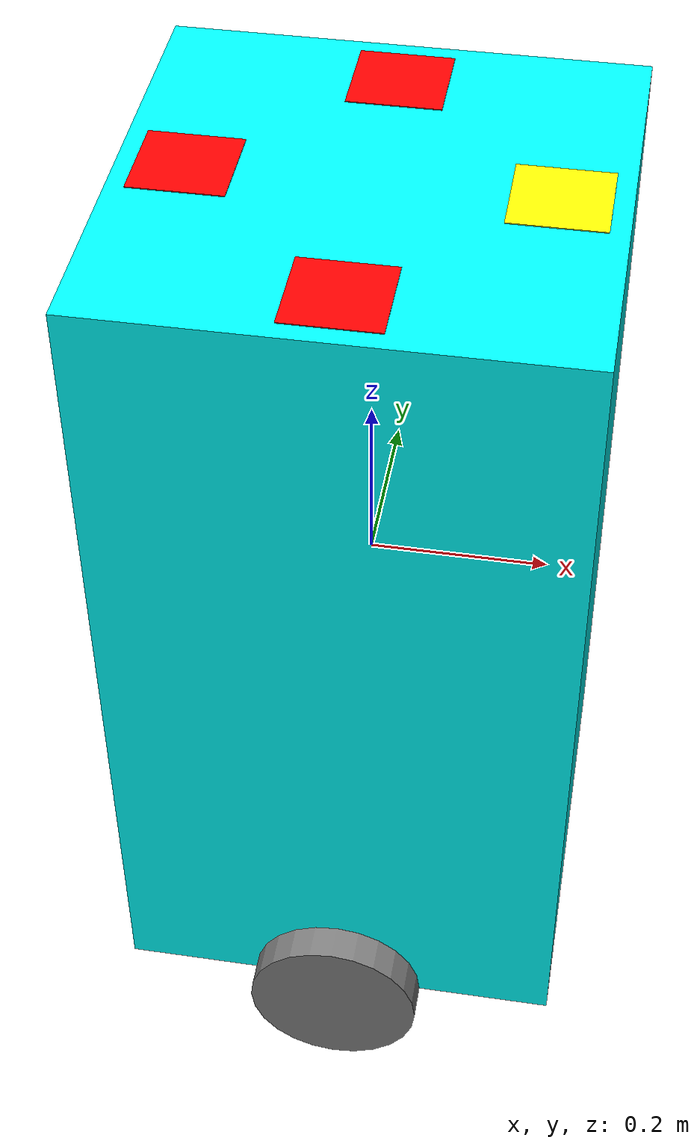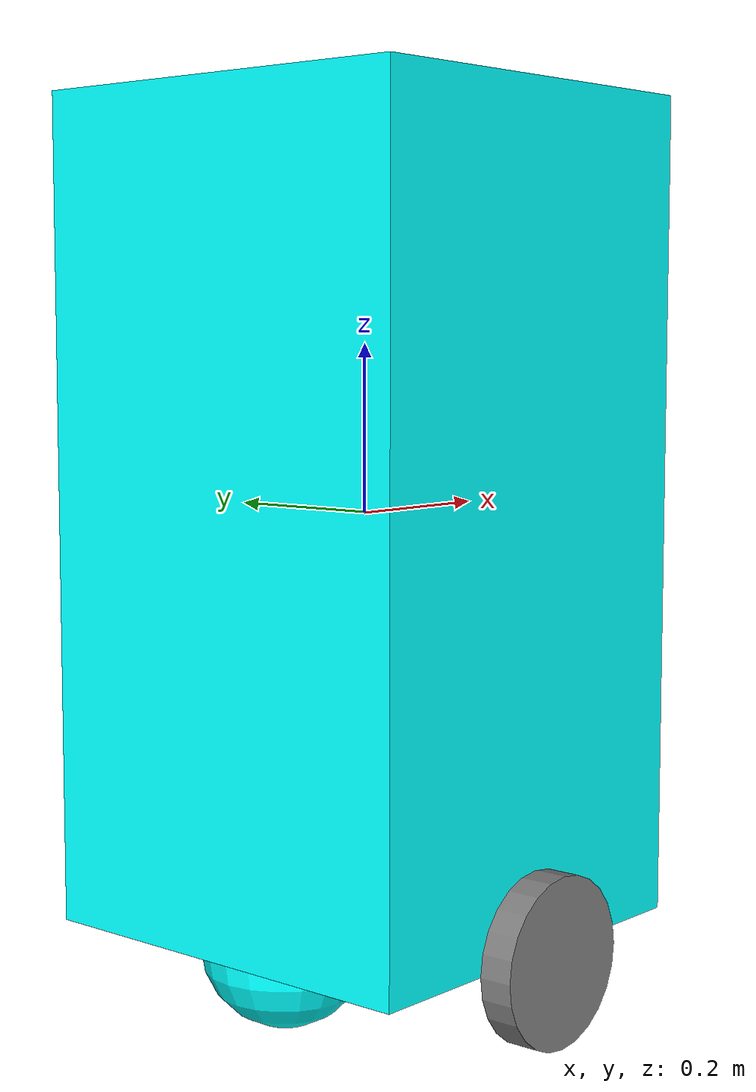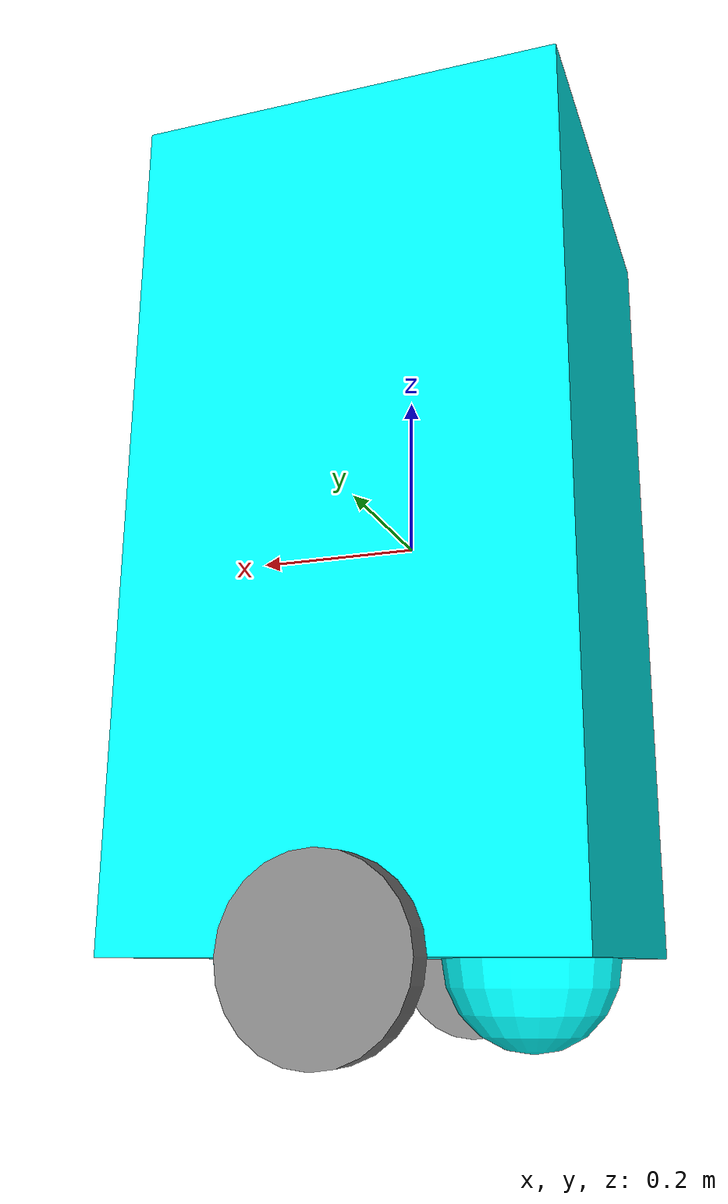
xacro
<?xml version="1.0"?>
<robot xmlns:xacro="http://www.ros.org/wiki/xacro" name="diffdrive_robot">

  <xacro:arg name="prefix" default="" />

  <xacro:include filename="$(find zalpiano_desc)/src/description/zalpiano_description.urdf.xacro" />

  <!-- We don't need to have materials defined for the zalpiano_desc.urdf.xacro -->

  <xacro:include filename="$(find odrive_demo_description)/urdf/odrive.ros2_control.xacro" />

  <xacro:odrive_ros2_control
    name="ODriveDiffBot"
    joint0_name="$(arg prefix)drivewhl_l_joint"
    joint1_name="$(arg prefix)drivewhl_r_joint" />

</robot>

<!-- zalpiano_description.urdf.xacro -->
<robot name="zalpiano" xmlns:xacro="http://ros.org/wiki/xacro">

  <!-- Define robot constants -->
  <xacro:property name="base_width" value="0.51"/>
  <xacro:property name="base_length" value="0.51"/>
  <xacro:property name="base_height" value="0.98"/>

  <xacro:property name="wheel_radius" value="0.10"/>
  <xacro:property name="wheel_width" value="0.04"/>
  <xacro:property name="wheel_ygap" value="0.02"/>
  <xacro:property name="wheel_zoff" value="0.49"/> <!-- half of base height for wheel axis placement to be on bottom of robot -->
  <xacro:property name="wheel_xoff" value="0.0"/>

  <xacro:property name="caster_xoff" value="0.14"/>

  <!-- BASE (Body) -->
  <link name="base_link">
    <visual>
      <geometry>
        <box size="${base_length} ${base_width} ${base_height}"/>
      </geometry>
      <material name="Cyan">
        <color rgba="0 1.0 1.0 1.0"/>
      </material>
    </visual>
  </link>

  <!-- FOOTPRINT (this should be projected onto the ground, take care of the z values) -->
  <link name="base_footprint"/>

  <joint name="base_joint" type="fixed">
    <parent link="base_link"/>
    <child link="base_footprint"/>
    <origin xyz="0.0 0.0 ${-(wheel_radius+wheel_zoff)}" rpy="0 0 0"/>
  </joint>

  <!-- WHEELS -->
  <xacro:macro name="wheel" params="prefix x_reflect y_reflect">
    <link name="${prefix}_link">
      <visual>
        <origin xyz="0 0 0" rpy="${pi/2} 0 0"/>
        <geometry>
            <cylinder radius="${wheel_radius}" length="${wheel_width}"/>
        </geometry>
        <material name="Gray">
          <color rgba="0.5 0.5 0.5 1.0"/>
        </material>
      </visual>
    </link>

    <joint name="${prefix}_joint" type="continuous">
      <parent link="base_link"/>
      <child link="${prefix}_link"/>
      <origin xyz="${x_reflect*wheel_xoff} ${y_reflect*(base_width/2+wheel_ygap)} ${-wheel_zoff}" rpy="0 0 0"/>
      <axis xyz="0 1 0"/>
    </joint>
  </xacro:macro>

  <xacro:wheel prefix="drivewhl_l" x_reflect="-1" y_reflect="1" />
  <xacro:wheel prefix="drivewhl_r" x_reflect="-1" y_reflect="-1" />

  <!-- CASTER WHEEL -->
  <link name="front_caster">
    <visual>
      <geometry>
        <sphere radius="${(wheel_radius+wheel_zoff-(base_height/2))}"/>
      </geometry>
      <material name="Cyan">
        <color rgba="0 1.0 1.0 1.0"/>
      </material>
    </visual>
  </link>

  <joint name="front_caster_joint" type="fixed">
    <parent link="base_link"/>
    <child link="front_caster"/>
    <origin xyz="${caster_xoff} 0.0 ${-(base_height/2)}" rpy="0 0 0"/>
  </joint>

  <link name="back_caster">
    <visual>
      <geometry>
        <sphere radius="${(wheel_radius+wheel_zoff-(base_height/2))}"/>
      </geometry>
      <material name="Cyan">
        <color rgba="0 1.0 1.0 1.0"/>
      </material>
    </visual>
  </link>

  <joint name="back_caster_joint" type="fixed">
    <parent link="base_link"/>
    <child link="back_caster"/>
    <origin xyz="${-caster_xoff} 0.0 ${-(base_height/2)}" rpy="0 0 0"/>
  </joint>

  <!-- ArUco Marker 0 -->
  <link name="aruco_marker_0_link">
    <visual>
      <origin xyz="0 0 0.001" rpy="0 0 0"/>
      <geometry>
        <box size="0.1 0.1 0.001"/>
      </geometry>
      <material name="Aruco0">
        <!-- color for RVIZ-->
        <color rgba="1 1 0 1"/>
      </material>
    </visual>

    <collision>
      <origin xyz="0 0 0.001" rpy="0 0 0"/>
      <geometry>
        <box size="0.1 0.1 0.001"/>
      </geometry>
    </collision>

  </link>

  <joint name="base_to_aruco_marker_0" type="fixed">
    <parent link="base_link"/>
    <child link="aruco_marker_0_link"/>
    <origin xyz="0.185 0 ${(base_height)/2}" rpy="0 0 0"/>
  </joint>

  <!-- ArUco Marker 1 -->
  <link name="aruco_marker_1_link">
    <visual>
      <origin xyz="0 0 0.001" rpy="0 0 0"/>
      <geometry>
        <box size="0.1 0.1 0.001"/>
      </geometry>
      <material name="Aruco1">
        <!-- color for RVIZ-->
        <color rgba="1 0 0 1"/>
      </material>
    </visual>

    <collision>
      <origin xyz="0 0 0.001" rpy="0 0 0"/>
      <geometry>
        <box size="0.1 0.1 0.001"/>
      </geometry>
    </collision>

  </link>

  <joint name="base_to_aruco_marker_1" type="fixed">
    <parent link="base_link"/>
    <child link="aruco_marker_1_link"/>
    <origin xyz="0 0.185 ${(base_height)/2}" rpy="0 0 0"/>
  </joint>

  <!-- ArUco Marker 2 -->
  <link name="aruco_marker_2_link">
    <visual>
      <origin xyz="0 0 0.001" rpy="0 0 0"/>
      <geometry>
        <box size="0.1 0.1 0.001"/>
      </geometry>
      <material name="Aruco2">
        <!-- color for RVIZ-->
        <color rgba="1 0 0 1"/>
      </material>
    </visual>

    <collision>
      <origin xyz="0 0 0.001" rpy="0 0 0"/>
      <geometry>
        <box size="0.1 0.1 0.001"/>
      </geometry>
    </collision>

  </link>

  <joint name="base_to_aruco_marker_2" type="fixed">
    <parent link="base_link"/>
    <child link="aruco_marker_2_link"/>
    <origin xyz="-0.185 0 ${(base_height)/2}" rpy="0 0 0"/>
  </joint>

  <!-- ArUco Marker 3 -->
  <link name="aruco_marker_3_link">
    <visual>
      <origin xyz="0 0 0.001" rpy="0 0 0"/>
      <geometry>
        <box size="0.1 0.1 0.001"/>
      </geometry>
      <material name="Aruco3">
        <!-- color for RVIZ-->
        <color rgba="1 0 0 1"/>
      </material>
    </visual>

    <collision>
      <origin xyz="0 0 0.001" rpy="0 0 0"/>
      <geometry>
        <box size="0.1 0.1 0.001"/>
      </geometry>
    </collision>

  </link>

  <joint name="base_to_aruco_marker_3" type="fixed">
    <parent link="base_link"/>
    <child link="aruco_marker_3_link"/>
    <origin xyz="0 -0.185 ${(base_height)/2}" rpy="0 0 0"/>
  </joint>

  <link name="aruco_center_link0">
  </link>

  <joint name="center_to_aruco_marker_0" type="fixed">
    <parent link="base_link"/>
    <child link="aruco_center_link0"/>
    <origin xyz="0 0 0" rpy="0 0 0"/>
  </joint>

  <link name="aruco_center_link1">
  </link>

  <joint name="center_to_aruco_marker_1" type="fixed">
    <parent link="base_link"/>
    <child link="aruco_center_link1"/>
    <origin xyz="0 0 0" rpy="0 0 0"/>
  </joint>

  <link name="aruco_center_link2">
  </link>

  <joint name="center_to_aruco_marker_2" type="fixed">
    <parent link="base_link"/>
    <child link="aruco_center_link2"/>
    <origin xyz="0 0 0" rpy="0 0 0"/>
  </joint>

  <link name="aruco_center_link3">
  </link>

  <joint name="center_to_aruco_marker_3" type="fixed">
    <parent link="base_link"/>
    <child link="aruco_center_link3"/>
    <origin xyz="0 0 0" rpy="0 0 0"/>
  </joint>

</robot>
